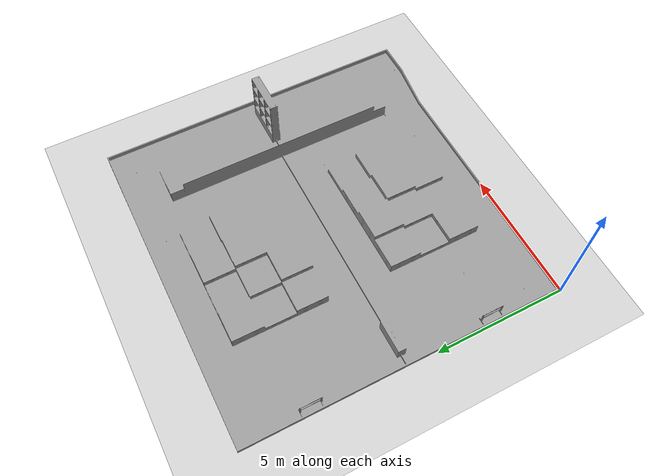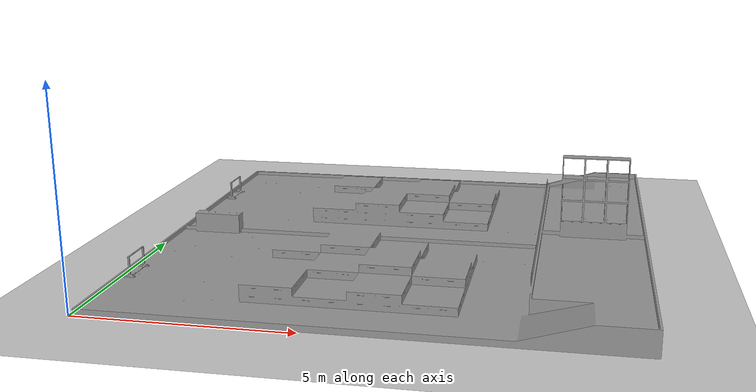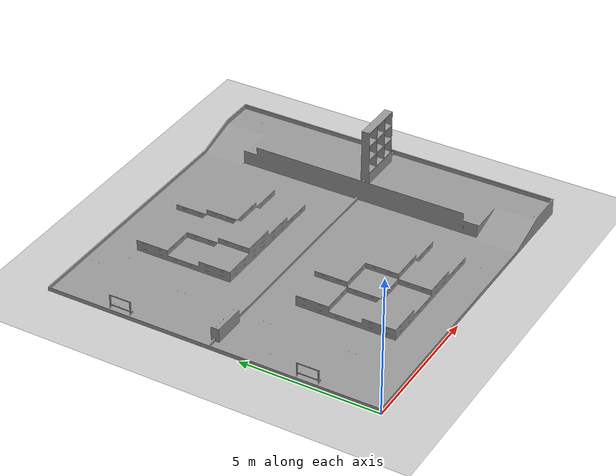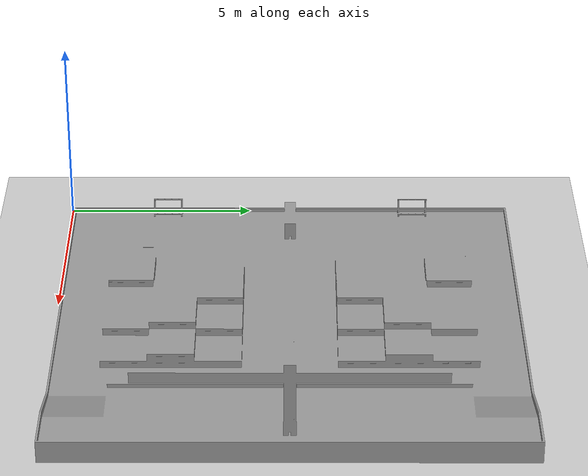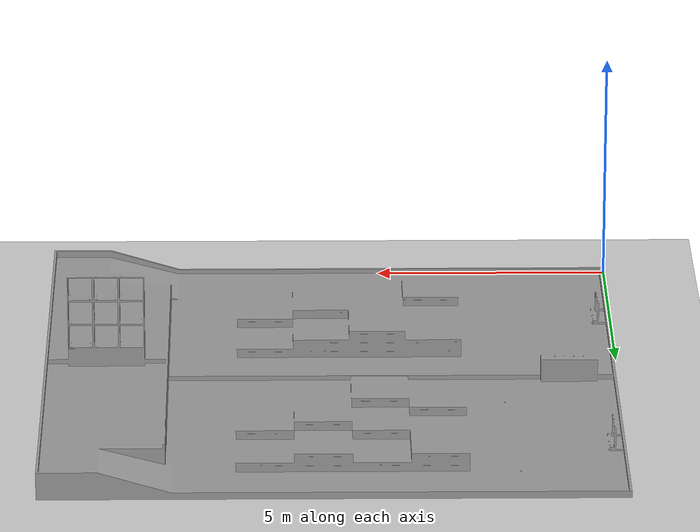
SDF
<?xml version="1.0" ?>
<sdf version="1.5">
    <world name="default">

        <physics type="ode">
        <max_step_size>0.001</max_step_size>
        <real_time_factor>1</real_time_factor>
        <real_time_update_rate>1000</real_time_update_rate>
        <gravity>0 0 -9.81</gravity>
            <ode>
                <solver>
                <type>quick</type>
                <iters>50</iters>
                <sor>1.3</sor>
                </solver>
                <constraints>
                <cfm>0.0</cfm>
                <erp>0.2</erp>
                <contact_max_correcting_vel>10.0</contact_max_correcting_vel>
                <contact_surface_layer>0.001</contact_surface_layer>
                </constraints>
            </ode>
        </physics>

        <scene>
        <sky>
            <clouds>
                <speed>12</speed>
            </clouds>
        </sky>
        </scene>
        <!-- A global light source -->
        <include>
            <uri>model://sun</uri>
        </include>
        <!-- A ground plane -->
        <include>
            <uri>model://ground_plane</uri>
        </include>
        <!-- environment blocks, obstacles or stairs -->

        <include>
            <uri>/home/icy/26rc_ws/src/rc_simulation/worlds/2026GYM</uri>
        </include>

    </world>
</sdf>

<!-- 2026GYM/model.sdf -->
<sdf version='1.7'>
  <model name='2026world'>
    <link name='link_0'>
      <inertial>
        <mass>1</mass>
        <inertia>
          <ixx>0.166667</ixx>
          <ixy>0</ixy>
          <ixz>0</ixz>
          <iyy>0.166667</iyy>
          <iyz>0</iyz>
          <izz>0.166667</izz>
        </inertia>
        <pose>0 0 0 0 -0 0</pose>
      </inertial>
      <pose>0 -4e-06 0 1.5708 -0 1.5708</pose>
      <self_collide>0</self_collide>
      <enable_wind>0</enable_wind>
      <kinematic>0</kinematic>
      <gravity>1</gravity>
      <visual name='visual'>
        <pose>0 0 0 0 -0 0</pose>
        <geometry>
          <mesh>
            <uri>/home/icy/26rc_ws/src/rc_simulation/meshes/25ndrc_map.stl</uri>
            <scale>0.001 0.001 0.001</scale>
          </mesh>
        </geometry>
        <material>
          <lighting>1</lighting>
          <script>
            <uri>file://media/materials/scripts/gazebo.material</uri>
            <name>Gazebo/Grey</name>
          </script>
          <shader type='pixel'>
            <normal_map>__default__</normal_map>
          </shader>
          <ambient>0.3 0.3 0.3 1</ambient>
          <diffuse>0.7 0.7 0.7 1</diffuse>
          <specular>0.01 0.01 0.01 1</specular>
          <emissive>0 0 0 1</emissive>
        </material>
        <transparency>0</transparency>
        <cast_shadows>1</cast_shadows>
      </visual>
      <collision name='collision'>
        <laser_retro>0</laser_retro>
        <max_contacts>10</max_contacts>
        <pose>0 0 0 0 -0 0</pose>
        <geometry>
          <mesh>
            <uri>/home/icy/26rc_ws/src/rc_simulation/meshes/25ndrc_map.stl</uri>
            <scale>0.001 0.001 0.001</scale>
          </mesh>
        </geometry>
        <surface>
          <friction>
            <ode>
              <mu>1</mu>
              <mu2>1</mu2>
              <fdir1>0 0 0</fdir1>
              <slip1>0</slip1>
              <slip2>0</slip2>
            </ode>
            <torsional>
              <coefficient>1</coefficient>
              <patch_radius>0</patch_radius>
              <surface_radius>0</surface_radius>
              <use_patch_radius>1</use_patch_radius>
              <ode>
                <slip>0</slip>
              </ode>
            </torsional>
          </friction>
          <bounce>
            <restitution_coefficient>0</restitution_coefficient>
            <threshold>1e+06</threshold>
          </bounce>
          <contact>
            <collide_without_contact>0</collide_without_contact>
            <collide_without_contact_bitmask>1</collide_without_contact_bitmask>
            <collide_bitmask>1</collide_bitmask>
            <ode>
              <soft_cfm>0</soft_cfm>
              <soft_erp>0.2</soft_erp>
              <kp>1e+13</kp>
              <kd>1</kd>
              <max_vel>0.01</max_vel>
              <min_depth>0</min_depth>
            </ode>
            <bullet>
              <split_impulse>1</split_impulse>
              <split_impulse_penetration_threshold>-0.01</split_impulse_penetration_threshold>
              <soft_cfm>0</soft_cfm>
              <soft_erp>0.2</soft_erp>
              <kp>1e+13</kp>
              <kd>1</kd>
            </bullet>
          </contact>
        </surface>
      </collision>
    </link>
    <static>1</static>
    <allow_auto_disable>1</allow_auto_disable>
  </model>
</sdf>
